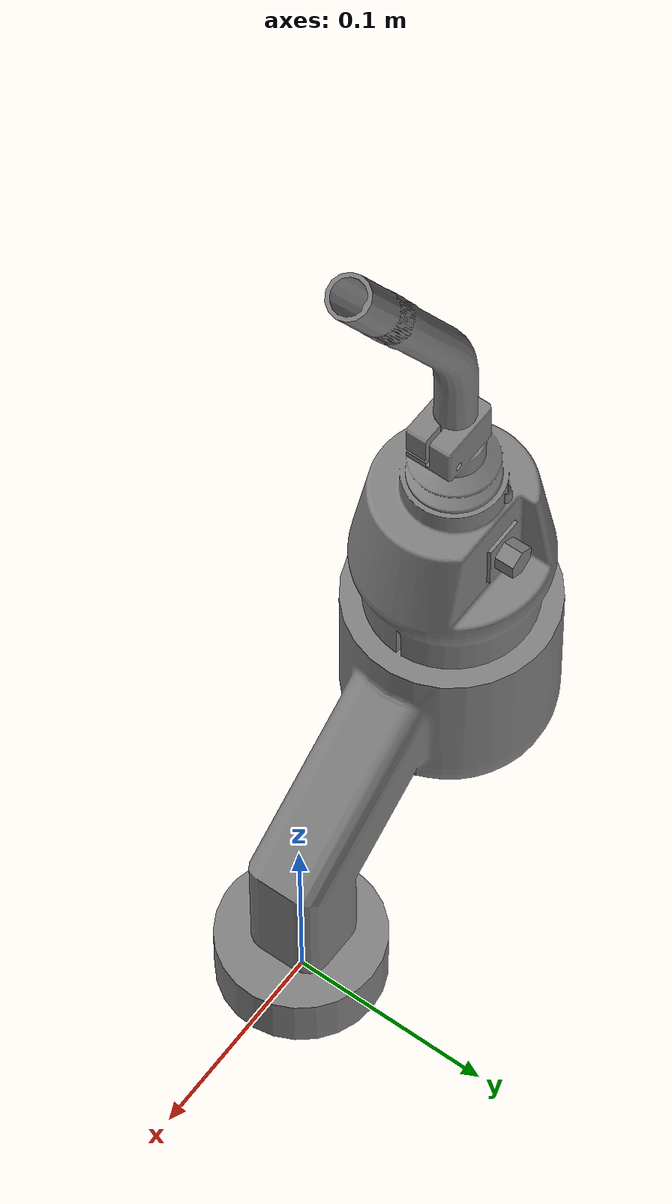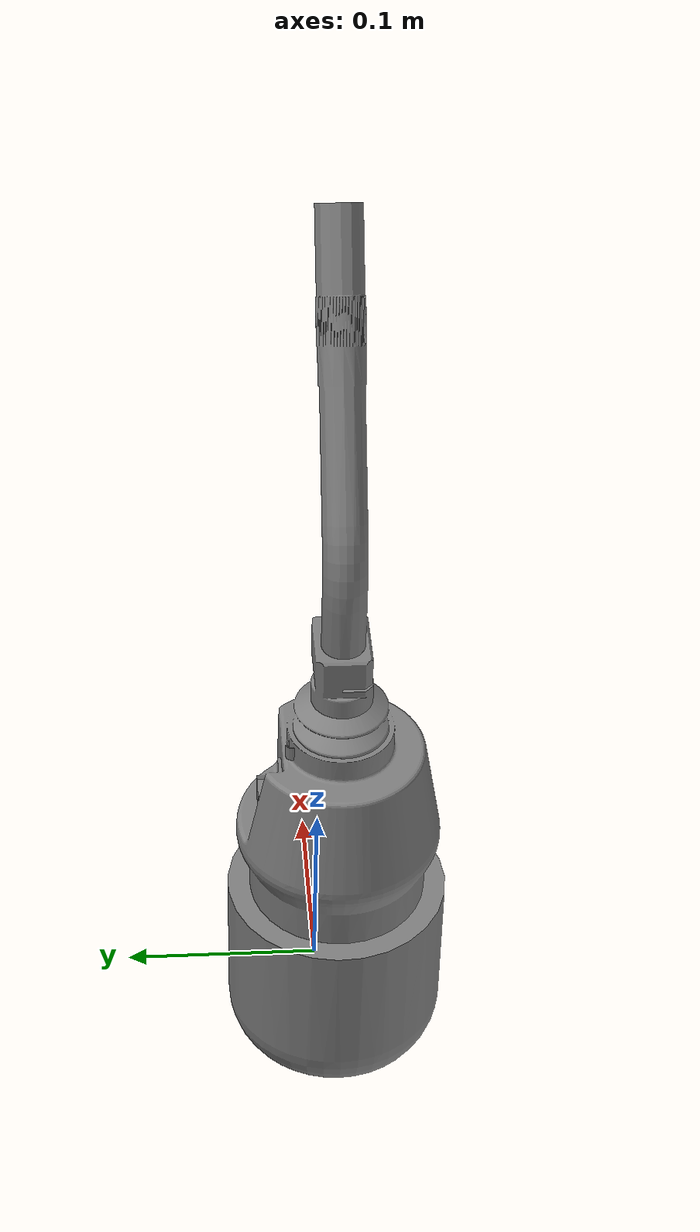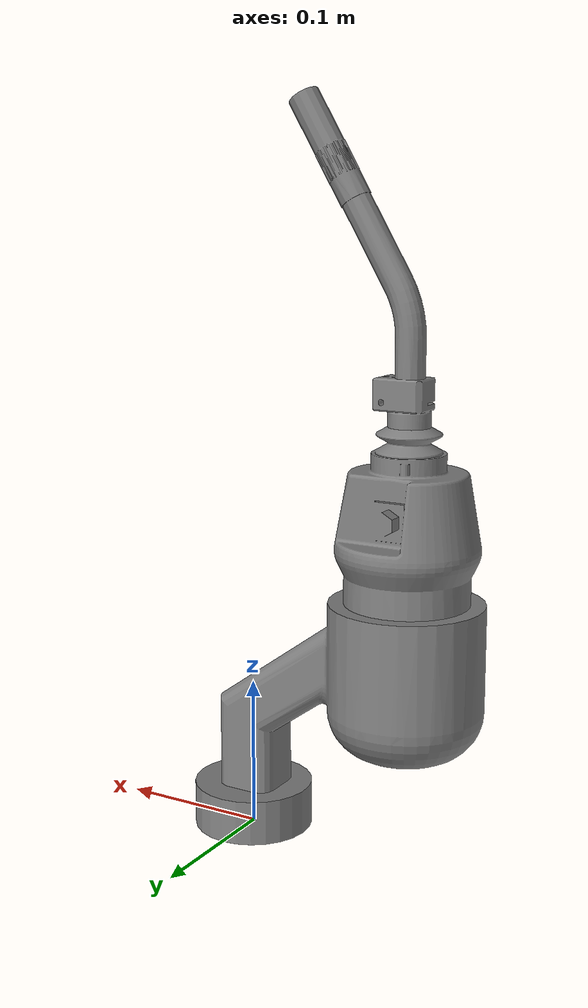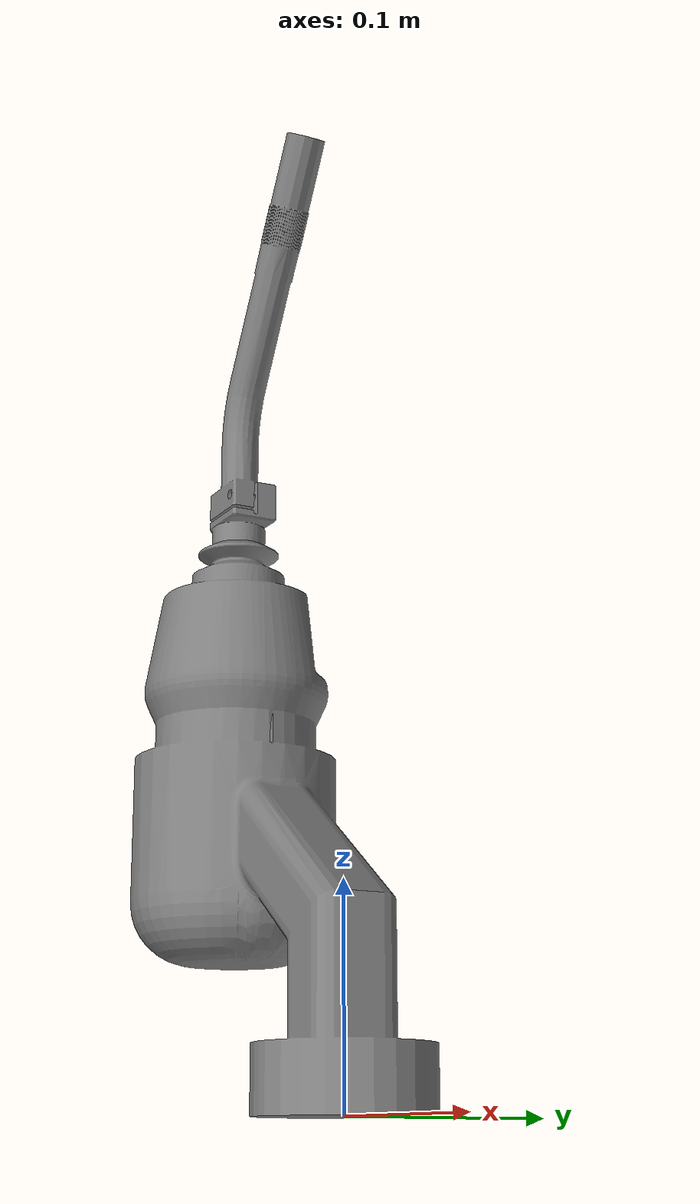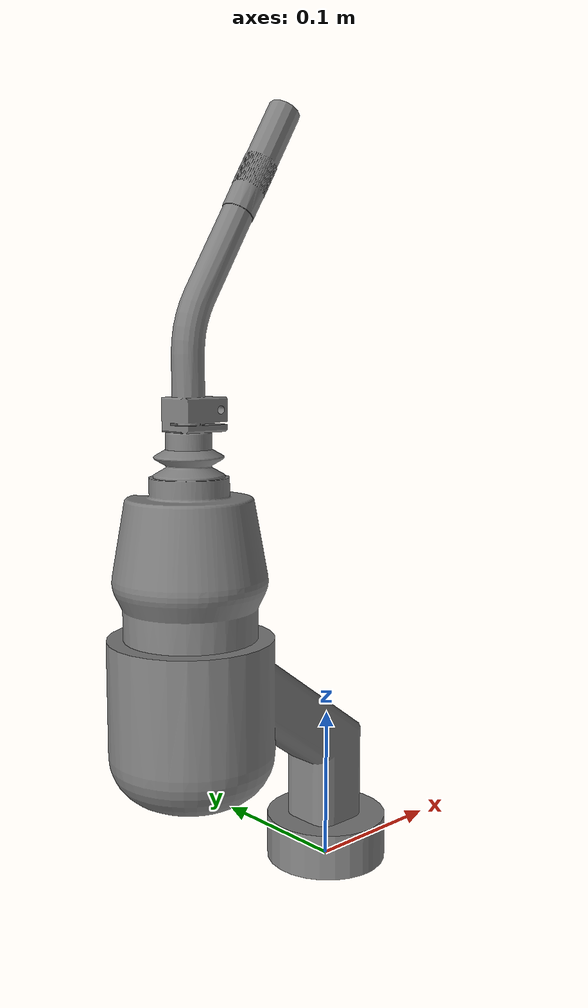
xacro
<?xml version="1.0"?>
<robot name="wld_gun">
  <link name="tool_origin">
    <visual>
      	<geometry>
          	<mesh filename="package://pct/data/meshes/wld_gun.stl"
                scale="1 1 1"/>
      	</geometry>
	  	<material name="ABS" >
          	<color rgba="0.5 0.5 0.5 1.0" />
         </material>
    	</visual>
  </link>
</robot>
